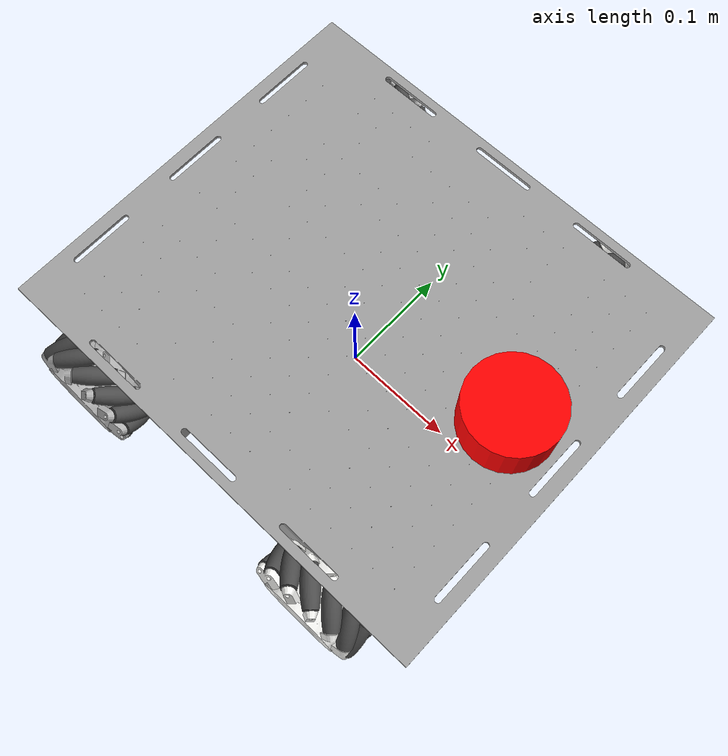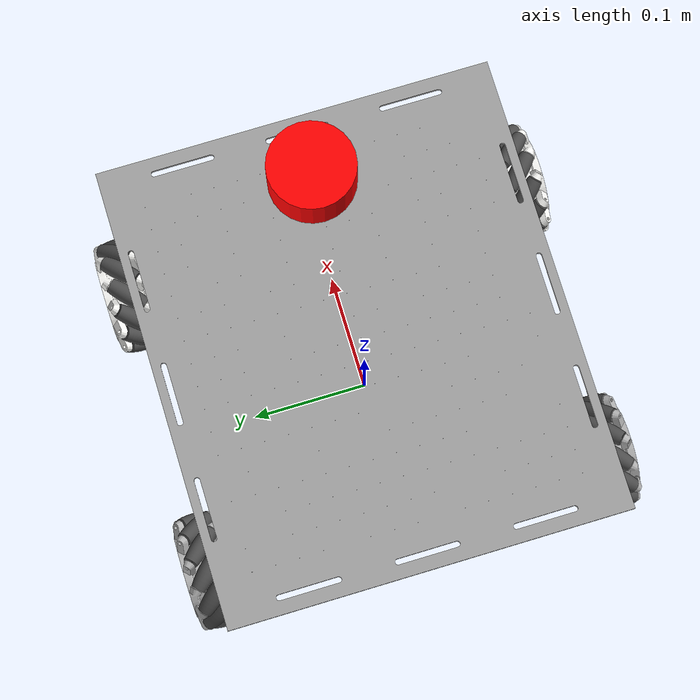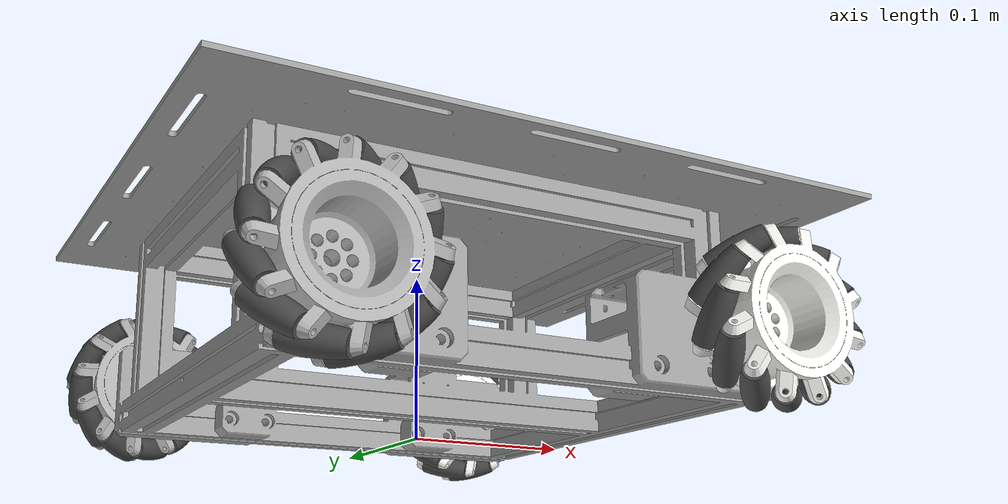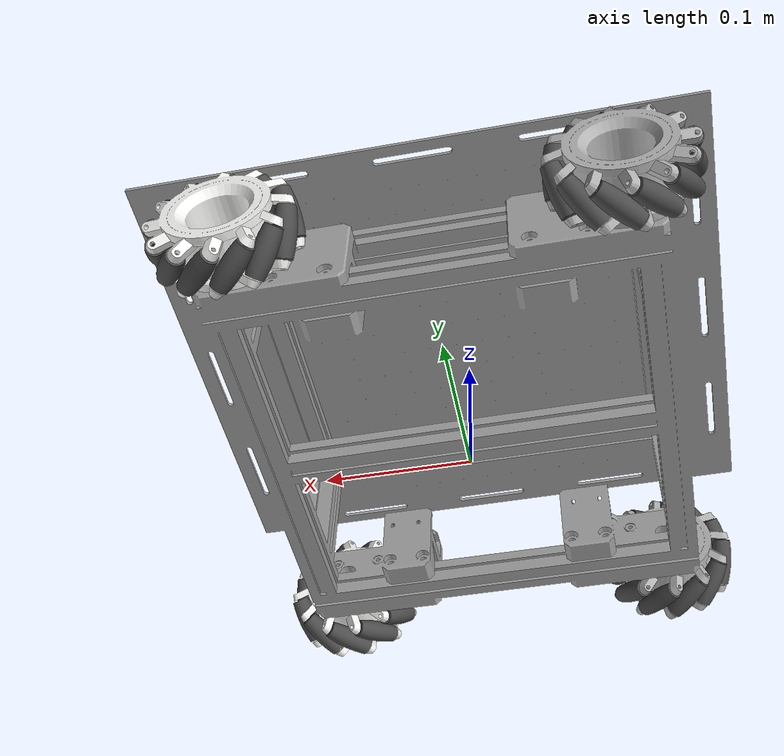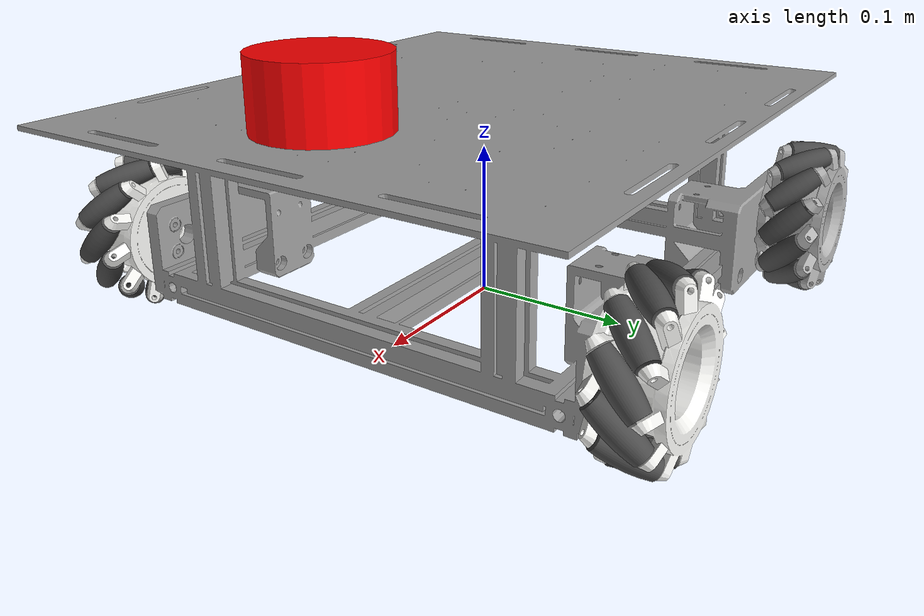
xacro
<?xml version="1.0" encoding="utf-8"?>

<!-- This is the main XACRO file for spawning the robot, containing all required xacro files.
    the user can choose to use ros2 control and the activation of sim_mode -->

<robot xmlns:xacro="https://www.ros.org/wiki/xacro" name="agv">

  <!-- Arguments -->
  <xacro:arg name="use_ros2_control" default="true"/>
  <xacro:arg name="sim_mode" default="false"/>

  <!-- Main AGV body -->
  <xacro:include filename="agv_body.xacro" />

  <!-- Use ROS2 Control -->
  <xacro:if value="$(arg use_ros2_control)">
    <xacro:include filename="ros2_control.xacro" />
  </xacro:if>

  <!-- DONT Use ROS2 Control -->
  <xacro:unless value="$(arg use_ros2_control)">
    <xacro:include filename="gazebo_control.xacro" />
  </xacro:unless>

  <!-- Start Lidar and IMU -->
  <xacro:include filename="lidar.xacro" />
  <xacro:include filename="imu.xacro" />

</robot>

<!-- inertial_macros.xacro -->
<!-- This XACRO contains the calculation formula for Inertia.
        They Overwrite original Solidworks values which have a non-symmetrical Inertial Matrices, which causes drifting-->

<robot xmlns:xacro="http://www.ros.org/wiki/xacro" >

    <xacro:macro name="inertial_sphere" params="mass radius *origin">
        <inertial>
            <xacro:insert_block name="origin"/>
            <mass value="${mass}" />
            <inertia ixx="${(2/5) * mass * (radius*radius)}" ixy="0.0" ixz="0.0"
                    iyy="${(2/5) * mass * (radius*radius)}" iyz="0.0"
                    izz="${(2/5) * mass * (radius*radius)}" />
        </inertial>
    </xacro:macro>

    <xacro:macro name="inertial_box" params="mass x y z *origin">
        <inertial>
            <xacro:insert_block name="origin"/>
            <mass value="${mass}" />
            <inertia ixx="${(1/12) * mass * (y*y+z*z)}" ixy="0.0" ixz="0.0"
                    iyy="${(1/12) * mass * (x*x+z*z)}" iyz="0.0"
                    izz="${(1/12) * mass * (x*x+y*y)}" />
        </inertial>
    </xacro:macro>

    <xacro:macro name="inertial_cylinder" params="mass length radius *origin">
        <inertial>
            <xacro:insert_block name="origin"/>
            <mass value="${mass}" />
            <inertia ixx="${(1/12) * mass * (3*radius*radius + length*length)}" ixy="0.0" ixz="0.0"
                    iyy="${(1/12) * mass * (3*radius*radius + length*length)}" iyz="0.0"
                    izz="${(1/2) * mass * (radius*radius)}" />
        </inertial>
    </xacro:macro>

</robot>

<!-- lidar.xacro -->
<!-- This XACRO initializes the Lidar, which includes the link and its joint.
    The Gazebo plugin for simulation will only be activated is sim_mode is true -->

<robot xmlns:xacro="http://www.ros.org/wiki/xacro">

    <link name="lidar_link">
        <inertial>
            <origin xyz="0 0 0" rpy="0.0 0.0 0.0"/>
            <mass value="0.190"/>
            <inertia ixx="0.000166667" ixy="0.000166667" ixz="0.000166667" iyy="0.0" iyz="0.0" izz="0.0"/>
        </inertial>
        <visual name="">
            <origin xyz="0 0 0" rpy="0.0 0.0 0.0"/>
            <geometry>
                <cylinder radius="0.038" length="0.041"/>
            </geometry>
            <material name="">
                <color rgba="1.0 0.0 0.0 1.0"/>
            </material>
        </visual>
        <collision>
            <origin xyz="0 0 0" rpy="0.0 0.0 0.0"/>
            <geometry>
                <cylinder radius="0.038" length="0.041"/>
            </geometry>
        </collision>
    </link>

    <joint name="lidar_joint" type="fixed">
        <parent link="chassis"/>
        <child link="lidar_link"/>
        <origin xyz="0.15 0.0 0.15" rpy="0.0 0.0 3.142"/>
    </joint>

    <xacro:unless value="$(arg sim_mode)">
    </xacro:unless>

    <xacro:if value="$(arg sim_mode)">
        <gazebo reference="lidar_link">
            <sensor type="ray" name="agv_lidar">
                <pose>0 0 0 0 0 0</pose>
                <visualize>true</visualize>
                <update_rate>10</update_rate>
                <ray>
                    <scan>
                        <horizontal>
                            <samples>2000</samples>
                            <resolution>1</resolution>
                            <min_angle>-3.142</min_angle>
                            <max_angle>3.142</max_angle>
                        </horizontal>
                    </scan>
                    <range>
                        <min>0.2</min>
                        <max>10.0</max>
                        <resolution>0.01</resolution>
                    </range>
                    <noise>
                        <type>gaussian</type>
                        <mean>0.0</mean>
                        <stddev>0.01</stddev>
                    </noise>
                </ray>
                <plugin name="lidar_controller" filename="libgazebo_ros_ray_sensor.so">
                    <ros>
                        <argument>~/out:=scan</argument>
                    </ros>
                    <output_type>sensor_msgs/LaserScan</output_type>
                    <frameName>lidar_link</frameName>
                </plugin>
            </sensor>
        </gazebo>

        <gazebo reference="lidar_link">
            <material>Gazebo/Red</material>
        </gazebo>
    </xacro:if>

</robot>

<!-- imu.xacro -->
<!-- This XACRO initializes the IMU, which includes the link, its joint and the Gazebo plugin for simulation -->

<robot xmlns:xacro="http://www.ros.org/wiki/xacro">

    <link name="imu_link">
    </link>

    <joint name="imu_joint" type="fixed">
        <parent link="chassis"/>
        <child link="imu_link"/>
        <origin xyz="0.0 0.0 0.0" rpy="0.0 0.0 0.0"/>
    </joint>

    <gazebo reference="imu_link">
        <gravity>true</gravity>
        <sensor name="imu_sensor" type="imu">
            <always_on>true</always_on>
            <update_rate>100</update_rate>
            <visualize>true</visualize>
            <topic>__default_topic__</topic>
            <plugin filename="libgazebo_ros_imu_sensor.so" name="imu_plugin">
                <ros>
                    <argument>~/out:=robot/imu</argument>
                </ros>
                <topicName>imu</topicName>
                <bodyName>imu_link</bodyName>
                <updateRateHZ>10.0</updateRateHZ>
                <gaussianNoise>0.0</gaussianNoise>
                <xyzOffset>0 0 0</xyzOffset>
                <rpyOffset>0 0 0</rpyOffset>
                <frameName>imu_link</frameName>
                <initialOrientationAsReference>false</initialOrientationAsReference>
            </plugin>
            <pose>0 0 0 0 0 0</pose>
        </sensor>
    </gazebo>

</robot>
